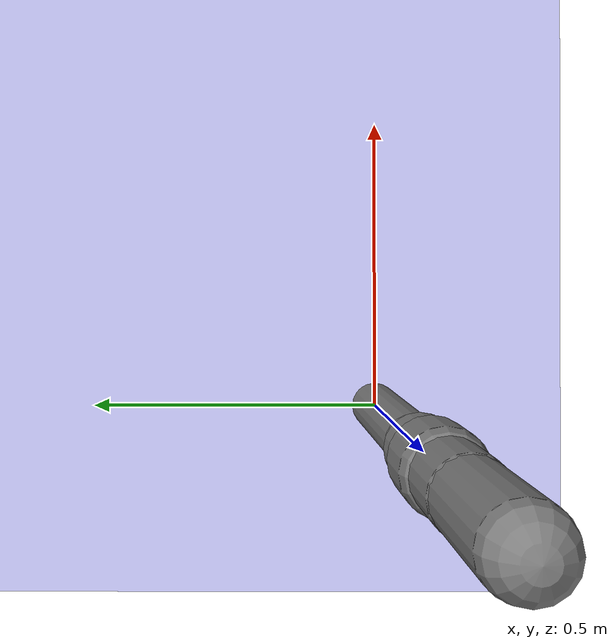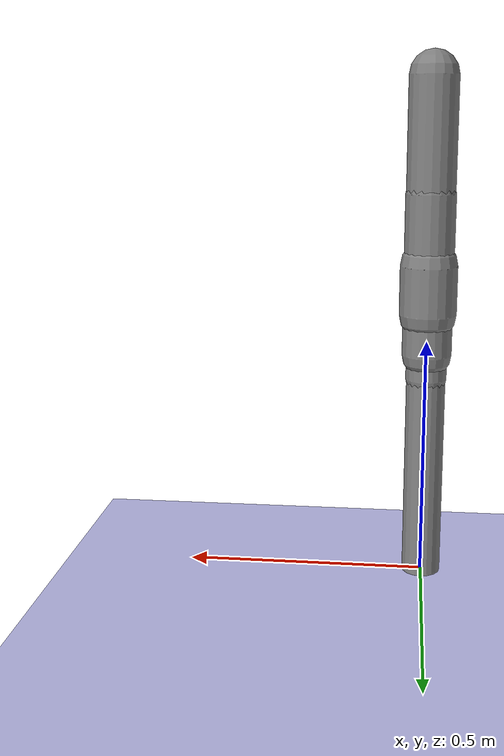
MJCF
<?xml version='1.0' encoding='UTF-8'?>
<mujoco model="robot_model">
  <worldbody>
    <light name="light" pos="0 -3 10" dir="0 0.5 -1" diffuse=".8 .8 .8" specular="0.1 0.1 0.1"/>
    <geom name="floor" type="plane" size="10.0 10.0 0.1" pos="0 0 0" rgba="0.8 0.8 1 1" contype="2" conaffinity="1"/>
    <body name="limb0" pos="0 0 0">
      <geom type="capsule" fromto="0 0 0 0 0 0.5914852488346102" size="0.04" density="1060.587778284437" contype="1" conaffinity="2"/>
      <site type="sphere" size="0.01" name="limb0_site0" pos="0 0 0.34123236084321074"/>
      <site type="sphere" size="0.01" name="limb0_site1" pos="0 0 0.557005299732679"/>
      <freejoint name="limb0_root"/>
      <body name="limb1" pos="0 0 0.34123236084321074">
        <geom type="capsule" fromto="0 0 0 0 0 0.2108483557747831" size="0.03176305440673138" density="688.7771406626807" contype="1" conaffinity="2"/>
        <site type="sphere" size="0.01" name="limb1_site0" pos="0 0 0.1315488757351795"/>
        <site type="sphere" size="0.01" name="limb1_site1" pos="0 0 0.0807207647042045"/>
        <site type="sphere" size="0.01" name="limb1_site2" pos="0 0 0.20255461164896735"/>
        <body name="limb2" pos="0 0 0.1315488757351795">
          <geom type="capsule" fromto="0 0 0 0 0 0.328612757384137" size="0.05065179609246566" density="732.5468624136837" contype="1" conaffinity="2"/>
          <joint name="joint_limb1_limb2_0" type="hinge" axis="0 1 0" range="-79.19027832141104 79.19027832141104" damping="5.0"/>
        </body>
        <body name="limb3" pos="0 0 0.0807207647042045">
          <geom type="capsule" fromto="0 0 0 0 0 0.3449366956007403" size="0.04182995516077146" density="888.638751137447" contype="1" conaffinity="2"/>
          <joint name="joint_limb1_limb3_0" type="hinge" axis="1 0 0" range="-82.77750976780038 82.77750976780038" damping="5.0"/>
        </body>
        <body name="limb4" pos="0 0 0.20255461164896735">
          <geom type="capsule" fromto="0 0 0 0 0 0.4823923729216987" size="0.02930993783622847" density="1063.016225397816" contype="1" conaffinity="2"/>
          <site type="sphere" size="0.01" name="limb4_site0" pos="0 0 0.21210766104123838"/>
          <site type="sphere" size="0.01" name="limb4_site1" pos="0 0 0.2445975136120204"/>
          <body name="limb5" pos="0 0 0.21210766104123838">
            <geom type="capsule" fromto="0 0 0 0 0 0.27490939239463524" size="0.04935019937932756" density="1200.0" contype="1" conaffinity="2"/>
            <joint name="joint_limb4_limb5_0" type="hinge" axis="0 1 0" range="-98.89882698854483 98.89882698854483" damping="5.0"/>
          </body>
          <body name="limb6" pos="0 0 0.2445975136120204">
            <geom type="capsule" fromto="0 0 0 0 0 0.1797215636428" size="0.026091798513952557" density="745.8119714770129" contype="1" conaffinity="2"/>
            <joint name="joint_limb4_limb6_0" type="hinge" axis="1 0 0" range="-43.50354587107485 43.50354587107485" damping="5.0"/>
          </body>
          <joint name="joint_limb1_limb4_0" type="hinge" axis="0 1 0" range="-113.63308743755412 113.63308743755412" damping="5.0"/>
        </body>
        <joint name="joint_limb0_limb1_0" type="hinge" axis="0 1 0" range="-72.78200781124774 72.78200781124774" damping="5.0"/>
      </body>
      <body name="limb7" pos="0 0 0.557005299732679">
        <geom type="capsule" fromto="0 0 0 0 0 0.1" size="0.058227424009137524" density="1200.0" contype="1" conaffinity="2"/>
        <site type="sphere" size="0.01" name="limb7_site0" pos="0 0 0.0013737858616478583"/>
        <body name="limb8" pos="0 0 0.0013737858616478583">
          <geom type="capsule" fromto="0 0 0 0 0 0.4337999318882061" size="0.03354519618055929" density="490.19423536920465" contype="1" conaffinity="2"/>
          <joint name="joint_limb7_limb8_0" type="hinge" axis="1 0 0" range="-52.04879772729198 52.04879772729198" damping="5.0"/>
        </body>
        <joint name="joint_limb0_limb7_0" type="hinge" axis="0 1 0" range="-46.186401585393725 46.186401585393725" damping="5.0"/>
      </body>
    </body>
  </worldbody>
  <actuator>
    <position name="position_actuator_joint_limb0_limb1_0" joint="joint_limb0_limb1_0" gear="1.0330237717590445" inheritrange="1" kp="100.0"/>
    <position name="position_actuator_joint_limb1_limb2_0" joint="joint_limb1_limb2_0" gear="1.0104857860709995" inheritrange="1" kp="100.0"/>
    <position name="position_actuator_joint_limb1_limb3_0" joint="joint_limb1_limb3_0" gear="2.0" inheritrange="1" kp="100.0"/>
    <position name="position_actuator_joint_limb1_limb4_0" joint="joint_limb1_limb4_0" gear="1.088244334155184" inheritrange="1" kp="100.0"/>
    <position name="position_actuator_joint_limb4_limb5_0" joint="joint_limb4_limb5_0" gear="1.1120952926298953" inheritrange="1" kp="100.0"/>
    <position name="position_actuator_joint_limb4_limb6_0" joint="joint_limb4_limb6_0" gear="1.5432977976206512" inheritrange="1" kp="100.0"/>
    <position name="position_actuator_joint_limb0_limb7_0" joint="joint_limb0_limb7_0" gear="0.5181521235082891" inheritrange="1" kp="100.0"/>
    <position name="position_actuator_joint_limb7_limb8_0" joint="joint_limb7_limb8_0" gear="1.7337317377821846" inheritrange="1" kp="100.0"/>
  </actuator>
</mujoco>
